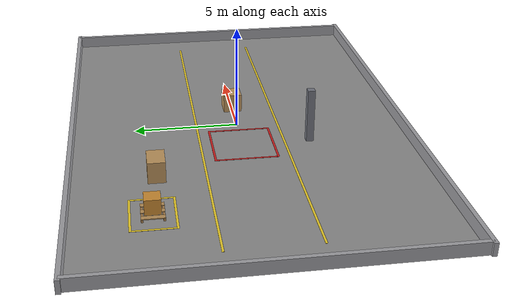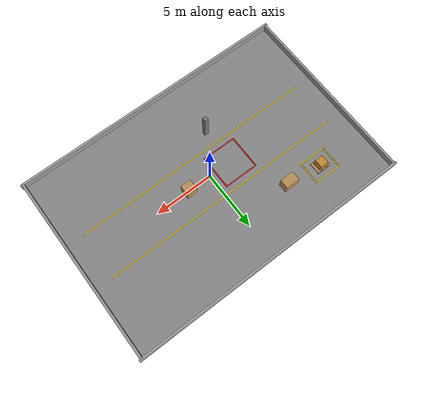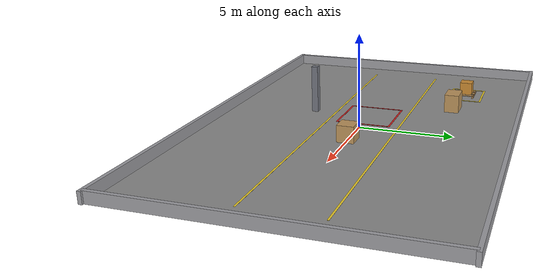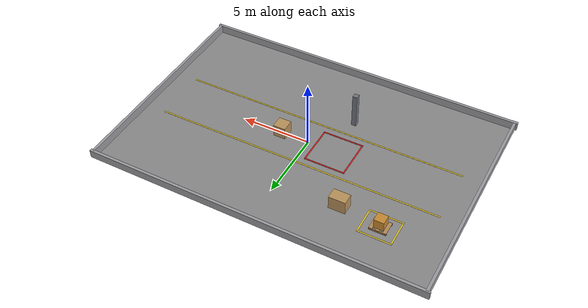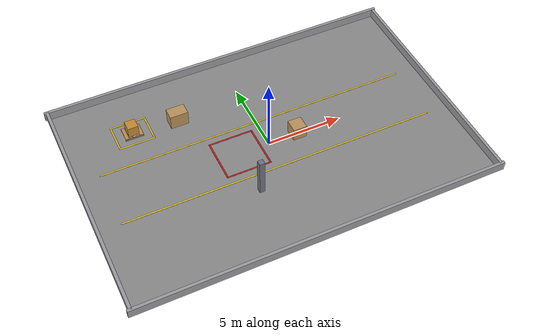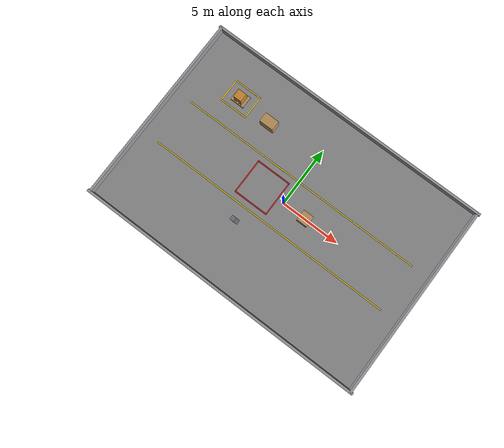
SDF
<?xml version="1.0" ?>
<sdf version="1.8">
  <world name="forklift_arena">

    <physics type="ode">
      <max_step_size>0.002</max_step_size>
      <real_time_factor>1.0</real_time_factor>
      <real_time_update_rate>500</real_time_update_rate>
    </physics>

    <plugin name="gz::sim::systems::Physics" filename="libgz-sim-physics-system.so"/>
    <plugin name="gz::sim::systems::UserCommands" filename="libgz-sim-user-commands-system.so"/>
    <plugin name="gz::sim::systems::SceneBroadcaster" filename="libgz-sim-scene-broadcaster-system.so"/>

    <!-- Required by the vehicle's gpu_lidar. Without this the scan topic
         is never advertised and the failure is silent. -->
    <plugin name="gz::sim::systems::Sensors" filename="libgz-sim-sensors-system.so">
      <render_engine>ogre2</render_engine>
    </plugin>

    <!-- ======================= GUI CONFIGURATION ====================== -->
    <gui fullscreen="0">

      <plugin filename="MinimalScene" name="3D View">
        <gz-gui>
          <title>3D View</title>
          <property type="bool" key="showTitleBar">false</property>
          <property type="string" key="state">docked</property>
        </gz-gui>
        <engine>ogre2</engine>
        <scene>scene</scene>
        <ambient_light>1.0 1.0 1.0</ambient_light>
        <background_color>0.7 0.7 0.7</background_color>
        <!-- Looking north east from over the south west corner of the
             hall, so the default spawn pose at (-6.00, 0) and the aisle
             ahead of it are both in frame with no camera move. -->
        <camera_pose>-13.5 -8.5 5.5 0 0.36 0.84</camera_pose>
      </plugin>

      <!-- Feeds the 3D view from the server's scene topic. Without it the
           view renders an empty scene and every other plugin here has
           nothing to attach to. -->
      <plugin filename="GzSceneManager" name="Scene Manager">
        <gz-gui>
          <property key="resizable" type="bool">false</property>
          <property key="width" type="double">5</property>
          <property key="height" type="double">5</property>
          <property key="state" type="string">floating</property>
          <property key="showTitleBar" type="bool">false</property>
        </gz-gui>
      </plugin>

      <plugin filename="InteractiveViewControl" name="Interactive view control">
        <gz-gui>
          <property key="resizable" type="bool">false</property>
          <property key="width" type="double">5</property>
          <property key="height" type="double">5</property>
          <property key="state" type="string">floating</property>
          <property key="showTitleBar" type="bool">false</property>
        </gz-gui>
      </plugin>

      <!-- Camera follow. With EntityContextMenuPlugin below it is what
           lets a viewer right click the vehicle and ride with it while
           the beams sweep. -->
      <plugin filename="CameraTracking" name="Camera Tracking">
        <gz-gui>
          <property key="resizable" type="bool">false</property>
          <property key="width" type="double">5</property>
          <property key="height" type="double">5</property>
          <property key="state" type="string">floating</property>
          <property key="showTitleBar" type="bool">false</property>
        </gz-gui>
      </plugin>

      <plugin filename="EntityContextMenuPlugin" name="Entity context menu">
        <gz-gui>
          <property key="state" type="string">floating</property>
          <property key="width" type="double">5</property>
          <property key="height" type="double">5</property>
          <property key="showTitleBar" type="bool">false</property>
        </gz-gui>
      </plugin>

      <plugin filename="WorldControl" name="World control">
        <gz-gui>
          <title>World control</title>
          <property type="bool" key="showTitleBar">false</property>
          <property type="bool" key="resizable">false</property>
          <property type="double" key="height">72</property>
          <property type="double" key="z">1</property>
          <property type="string" key="state">floating</property>
          <anchors target="3D View">
            <line own="left" target="left"/>
            <line own="bottom" target="bottom"/>
          </anchors>
        </gz-gui>
        <play_pause>true</play_pause>
        <step>true</step>
        <start_paused>false</start_paused>
        <use_event>true</use_event>
      </plugin>

      <plugin filename="WorldStats" name="World stats">
        <gz-gui>
          <title>World stats</title>
          <property type="bool" key="showTitleBar">false</property>
          <property type="bool" key="resizable">false</property>
          <property type="double" key="height">110</property>
          <property type="double" key="width">290</property>
          <property type="double" key="z">1</property>
          <property type="string" key="state">floating</property>
          <anchors target="3D View">
            <line own="right" target="right"/>
            <line own="bottom" target="bottom"/>
          </anchors>
        </gz-gui>
        <sim_time>true</sim_time>
        <real_time>true</real_time>
        <real_time_factor>true</real_time_factor>
        <iterations>true</iterations>
      </plugin>

      <!-- The beams. Docked rather than floating so the topic and
           display type combo boxes are visible without hunting: which
           scanner is on screen is not guessable from the picture. -->
      <plugin filename="VisualizeLidar" name="Visualize Lidar">
        <gz-gui>
          <title>Visualize lidar</title>
          <property type="string" key="state">docked</property>
        </gz-gui>
      </plugin>

      <plugin filename="Screenshot" name="Screenshot">
        <gz-gui>
          <property type="bool" key="showTitleBar">false</property>
          <property type="string" key="state">floating</property>
          <property type="double" key="width">100</property>
          <property type="double" key="height">50</property>
        </gz-gui>
      </plugin>

    </gui>

    <scene>
      <ambient>1 1 1 1</ambient>
      <background>0.7 0.7 0.7 1</background>
      <shadows>false</shadows>
      <grid>false</grid>
    </scene>

    <light name="sun" type="directional">
      <cast_shadows>false</cast_shadows>
      <pose>0 0 12 0 0 0</pose>
      <diffuse>1.0 1.0 1.0 1</diffuse>
      <specular>0.2 0.2 0.2 1</specular>
      <direction>-0.3 0.3 -1.0</direction>
    </light>

    <gravity>0 0 -9.8</gravity>

    <!-- ============================ Floor ============================ -->
    <!-- Plain concrete. mu 1.0 so the drive wheel has something to push
         against; the tricycle is a single driven wheel and a slippery
         floor turns traction figures into tyre slip figures. -->
    <model name="Floor">
      <static>true</static>
      <link name="link">
        <collision name="collision">
          <geometry>
            <plane><normal>0 0 1</normal><size>24 16</size></plane>
          </geometry>
          <surface>
            <friction><ode><mu>1.0</mu><mu2>1.0</mu2></ode></friction>
          </surface>
        </collision>
        <visual name="visual">
          <geometry>
            <plane><normal>0 0 1</normal><size>24 16</size></plane>
          </geometry>
          <material>
            <ambient>0.55 0.55 0.55 1</ambient>
            <diffuse>0.55 0.55 0.55 1</diffuse>
          </material>
        </visual>
      </link>
    </model>

    <!-- ======================= Perimeter walls ======================= -->
    <model name="WallWest">
      <static>true</static>
      <pose>-12.00 0 0.30 0 0 0</pose>
      <link name="link">
        <collision name="collision">
          <geometry><box><size>0.20 16.00 0.60</size></box></geometry>
        </collision>
        <visual name="visual">
          <geometry><box><size>0.20 16.00 0.60</size></box></geometry>
          <material><ambient>0.62 0.62 0.64 1</ambient><diffuse>0.62 0.62 0.64 1</diffuse></material>
        </visual>
      </link>
    </model>

    <model name="WallEast">
      <static>true</static>
      <pose>12.00 0 0.30 0 0 0</pose>
      <link name="link">
        <collision name="collision">
          <geometry><box><size>0.20 16.00 0.60</size></box></geometry>
        </collision>
        <visual name="visual">
          <geometry><box><size>0.20 16.00 0.60</size></box></geometry>
          <material><ambient>0.62 0.62 0.64 1</ambient><diffuse>0.62 0.62 0.64 1</diffuse></material>
        </visual>
      </link>
    </model>

    <model name="WallSouth">
      <static>true</static>
      <pose>0 -8.00 0.30 0 0 0</pose>
      <link name="link">
        <collision name="collision">
          <geometry><box><size>24.40 0.20 0.60</size></box></geometry>
        </collision>
        <visual name="visual">
          <geometry><box><size>24.40 0.20 0.60</size></box></geometry>
          <material><ambient>0.62 0.62 0.64 1</ambient><diffuse>0.62 0.62 0.64 1</diffuse></material>
        </visual>
      </link>
    </model>

    <model name="WallNorth">
      <static>true</static>
      <pose>0 8.00 0.30 0 0 0</pose>
      <link name="link">
        <collision name="collision">
          <geometry><box><size>24.40 0.20 0.60</size></box></geometry>
        </collision>
        <visual name="visual">
          <geometry><box><size>24.40 0.20 0.60</size></box></geometry>
          <material><ambient>0.62 0.62 0.64 1</ambient><diffuse>0.62 0.62 0.64 1</diffuse></material>
        </visual>
      </link>
    </model>

    <!-- ====================== Drive aisle marking ===================== -->
    <model name="AisleMarking">
      <static>true</static>
      <link name="link">
        <visual name="edge_north">
          <pose>0 2.00 0.003 0 0 0</pose>
          <geometry><box><size>21.00 0.10 0.006</size></box></geometry>
          <material><ambient>0.92 0.80 0.16 1</ambient><diffuse>0.92 0.80 0.16 1</diffuse></material>
        </visual>
        <visual name="edge_south">
          <pose>0 -2.00 0.003 0 0 0</pose>
          <geometry><box><size>21.00 0.10 0.006</size></box></geometry>
          <material><ambient>0.92 0.80 0.16 1</ambient><diffuse>0.92 0.80 0.16 1</diffuse></material>
        </visual>
      </link>
    </model>

    <!-- ======================= Pallet zone marking ==================== -->
    <model name="PalletZoneMarking">
      <static>true</static>
      <pose>-7.50 4.50 0 0 0 0</pose>
      <link name="link">
        <visual name="edge_north">
          <pose>0 0.95 0.003 0 0 0</pose>
          <geometry><box><size>2.40 0.10 0.006</size></box></geometry>
          <material><ambient>0.92 0.80 0.16 1</ambient><diffuse>0.92 0.80 0.16 1</diffuse></material>
        </visual>
        <visual name="edge_south">
          <pose>0 -0.95 0.003 0 0 0</pose>
          <geometry><box><size>2.40 0.10 0.006</size></box></geometry>
          <material><ambient>0.92 0.80 0.16 1</ambient><diffuse>0.92 0.80 0.16 1</diffuse></material>
        </visual>
        <visual name="edge_west">
          <pose>-1.15 0 0.003 0 0 0</pose>
          <geometry><box><size>0.10 1.80 0.006</size></box></geometry>
          <material><ambient>0.92 0.80 0.16 1</ambient><diffuse>0.92 0.80 0.16 1</diffuse></material>
        </visual>
        <visual name="edge_east">
          <pose>1.15 0 0.003 0 0 0</pose>
          <geometry><box><size>0.10 1.80 0.006</size></box></geometry>
          <material><ambient>0.92 0.80 0.16 1</ambient><diffuse>0.92 0.80 0.16 1</diffuse></material>
        </visual>
      </link>
    </model>

    <!-- =============== Safety zone marking (SF-07 pattern) =============== -->
    <model name="SafetyZoneMarking">
      <static>true</static>
      <pose>-2.00 0.00 0 0 0 0</pose>
      <link name="link">
        <visual name="edge_north">
          <pose>0 1.45 0.003 0 0 0</pose>
          <geometry><box><size>3.00 0.10 0.006</size></box></geometry>
          <material><ambient>0.80 0.12 0.12 1</ambient><diffuse>0.80 0.12 0.12 1</diffuse></material>
        </visual>
        <visual name="edge_south">
          <pose>0 -1.45 0.003 0 0 0</pose>
          <geometry><box><size>3.00 0.10 0.006</size></box></geometry>
          <material><ambient>0.80 0.12 0.12 1</ambient><diffuse>0.80 0.12 0.12 1</diffuse></material>
        </visual>
        <visual name="edge_west">
          <pose>-1.45 0 0.003 0 0 0</pose>
          <geometry><box><size>0.10 2.80 0.006</size></box></geometry>
          <material><ambient>0.80 0.12 0.12 1</ambient><diffuse>0.80 0.12 0.12 1</diffuse></material>
        </visual>
        <visual name="edge_east">
          <pose>1.45 0 0.003 0 0 0</pose>
          <geometry><box><size>0.10 2.80 0.006</size></box></geometry>
          <material><ambient>0.80 0.12 0.12 1</ambient><diffuse>0.80 0.12 0.12 1</diffuse></material>
        </visual>
      </link>
    </model>

    <!-- ============================ Pallet =========================== -->
    <model name="Pallet">
      <static>false</static>
      <pose>-7.50 4.50 0 0 0 0</pose>
      <link name="link">
        <inertial>
          <pose>0 0 0.08 0 0 0</pose>
          <mass>20.0</mass>
          <inertia>
            <ixx>1.7093</ixx><ixy>0</ixy><ixz>0</ixz>
            <iyy>2.4427</iyy><iyz>0</iyz><izz>4.0667</izz>
          </inertia>
        </inertial>

        <collision name="block_left_collision">
          <pose>0 0.45 0.06 0 0 0</pose>
          <geometry><box><size>1.20 0.10 0.12</size></box></geometry>
          <surface>
            <friction><ode><mu>0.9</mu><mu2>0.9</mu2></ode></friction>
            <contact><ode><kp>1e6</kp><kd>100.0</kd></ode></contact>
          </surface>
        </collision>
        <visual name="block_left_visual">
          <pose>0 0.45 0.06 0 0 0</pose>
          <geometry><box><size>1.20 0.10 0.12</size></box></geometry>
          <material><ambient>0.66 0.50 0.30 1</ambient><diffuse>0.66 0.50 0.30 1</diffuse></material>
        </visual>

        <collision name="block_right_collision">
          <pose>0 -0.45 0.06 0 0 0</pose>
          <geometry><box><size>1.20 0.10 0.12</size></box></geometry>
          <surface>
            <friction><ode><mu>0.9</mu><mu2>0.9</mu2></ode></friction>
            <contact><ode><kp>1e6</kp><kd>100.0</kd></ode></contact>
          </surface>
        </collision>
        <visual name="block_right_visual">
          <pose>0 -0.45 0.06 0 0 0</pose>
          <geometry><box><size>1.20 0.10 0.12</size></box></geometry>
          <material><ambient>0.66 0.50 0.30 1</ambient><diffuse>0.66 0.50 0.30 1</diffuse></material>
        </visual>

        <collision name="deck_board_west_collision">
          <pose>-0.48 0 0.14 0 0 0</pose>
          <geometry><box><size>0.24 1.00 0.04</size></box></geometry>
          <surface>
            <friction><ode><mu>0.9</mu><mu2>0.9</mu2></ode></friction>
            <contact><ode><kp>1e6</kp><kd>100.0</kd></ode></contact>
          </surface>
        </collision>
        <visual name="deck_board_west_visual">
          <pose>-0.48 0 0.14 0 0 0</pose>
          <geometry><box><size>0.24 1.00 0.04</size></box></geometry>
          <material><ambient>0.72 0.56 0.34 1</ambient><diffuse>0.72 0.56 0.34 1</diffuse></material>
        </visual>

        <collision name="deck_board_mid_collision">
          <pose>0 0 0.14 0 0 0</pose>
          <geometry><box><size>0.24 1.00 0.04</size></box></geometry>
          <surface>
            <friction><ode><mu>0.9</mu><mu2>0.9</mu2></ode></friction>
            <contact><ode><kp>1e6</kp><kd>100.0</kd></ode></contact>
          </surface>
        </collision>
        <visual name="deck_board_mid_visual">
          <pose>0 0 0.14 0 0 0</pose>
          <geometry><box><size>0.24 1.00 0.04</size></box></geometry>
          <material><ambient>0.72 0.56 0.34 1</ambient><diffuse>0.72 0.56 0.34 1</diffuse></material>
        </visual>

        <collision name="deck_board_east_collision">
          <pose>0.48 0 0.14 0 0 0</pose>
          <geometry><box><size>0.24 1.00 0.04</size></box></geometry>
          <surface>
            <friction><ode><mu>0.9</mu><mu2>0.9</mu2></ode></friction>
            <contact><ode><kp>1e6</kp><kd>100.0</kd></ode></contact>
          </surface>
        </collision>
        <visual name="deck_board_east_visual">
          <pose>0.48 0 0.14 0 0 0</pose>
          <geometry><box><size>0.24 1.00 0.04</size></box></geometry>
          <material><ambient>0.72 0.56 0.34 1</ambient><diffuse>0.72 0.56 0.34 1</diffuse></material>
        </visual>
      </link>
    </model>

    <!-- =========================== Load box ========================== -->
    <!-- The load riding on the pallet. Bottom face sits on the deck top at
         z = 0.16, so it starts at rest and does not drop at world load. -->
    <model name="LoadBox">
      <pose>-7.50 4.50 0.51 0 0 0</pose>
      <link name="link">
        <inertial>
          <mass>30.0</mass>
          <inertia>
            <ixx>2.45</ixx><ixy>0</ixy><ixz>0</ixz>
            <iyy>2.45</iyy><iyz>0</iyz><izz>2.45</izz>
          </inertia>
        </inertial>
        <collision name="collision">
          <geometry><box><size>0.70 0.70 0.70</size></box></geometry>
          <surface>
            <friction><ode><mu>0.9</mu><mu2>0.9</mu2></ode></friction>
            <contact><ode><kp>1e6</kp><kd>100.0</kd></ode></contact>
          </surface>
        </collision>
        <visual name="visual">
          <geometry><box><size>0.70 0.70 0.70</size></box></geometry>
          <material><ambient>0.80 0.55 0.20 1</ambient><diffuse>0.80 0.55 0.20 1</diffuse></material>
        </visual>
      </link>
    </model>

    <!-- ========================= Obstacle props ======================= -->
    <model name="AisleCrate">
      <static>true</static>
      <pose>2.00 0.00 0.45 0 0 0</pose>
      <link name="link">
        <collision name="collision">
          <geometry><box><size>0.90 0.90 0.90</size></box></geometry>
        </collision>
        <visual name="visual">
          <geometry><box><size>0.90 0.90 0.90</size></box></geometry>
          <material><ambient>0.74 0.58 0.36 1</ambient><diffuse>0.74 0.58 0.36 1</diffuse></material>
        </visual>
      </link>
    </model>

    <model name="PillarSouth">
      <static>true</static>
      <pose>-2.00 -3.20 1.30 0 0 0</pose>
      <link name="link">
        <collision name="collision">
          <geometry><box><size>0.35 0.35 2.60</size></box></geometry>
        </collision>
        <visual name="visual">
          <geometry><box><size>0.35 0.35 2.60</size></box></geometry>
          <material><ambient>0.45 0.46 0.50 1</ambient><diffuse>0.45 0.46 0.50 1</diffuse></material>
        </visual>
      </link>
    </model>

    <model name="CrateNorth">
      <static>true</static>
      <pose>-4.50 4.20 0.50 0 0 0</pose>
      <link name="link">
        <collision name="collision">
          <geometry><box><size>1.20 0.80 1.00</size></box></geometry>
        </collision>
        <visual name="visual">
          <geometry><box><size>1.20 0.80 1.00</size></box></geometry>
          <material><ambient>0.74 0.58 0.36 1</ambient><diffuse>0.74 0.58 0.36 1</diffuse></material>
        </visual>
      </link>
    </model>

  </world>
</sdf>
